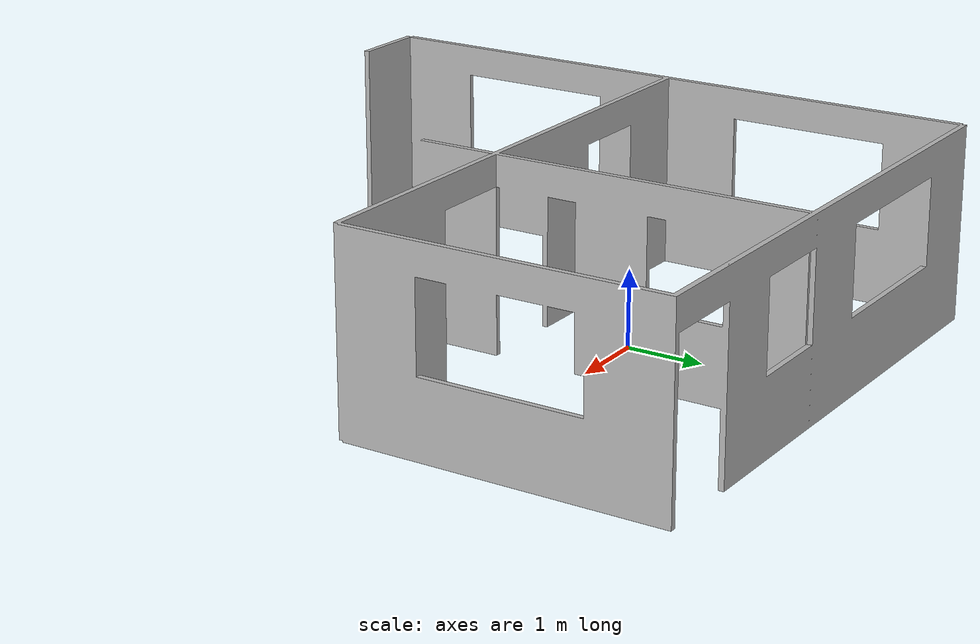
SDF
<?xml version='1.0'?>
<sdf version='1.6'>
  <model name='adream'>
    <link name='link_0'>
      <pose>0 0 0.05 0 0 0</pose>
      <visual name='visual'>
        <geometry>
          <mesh>
            <uri>model://adream/meshes/adream_empty.dae</uri>
            <scale>1 1 1</scale>
          </mesh>
        </geometry>
      </visual>
      <collision name='collision'>
        <geometry>
          <mesh>
            <uri>model://adream/meshes/adream_empty.dae</uri>
          </mesh>
        </geometry>
      </collision>
    </link>
  </model>
</sdf>
